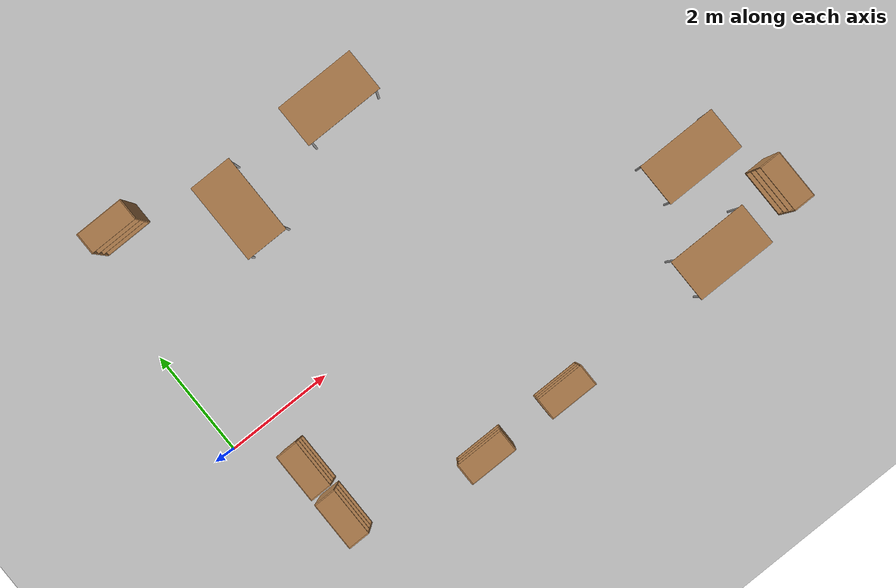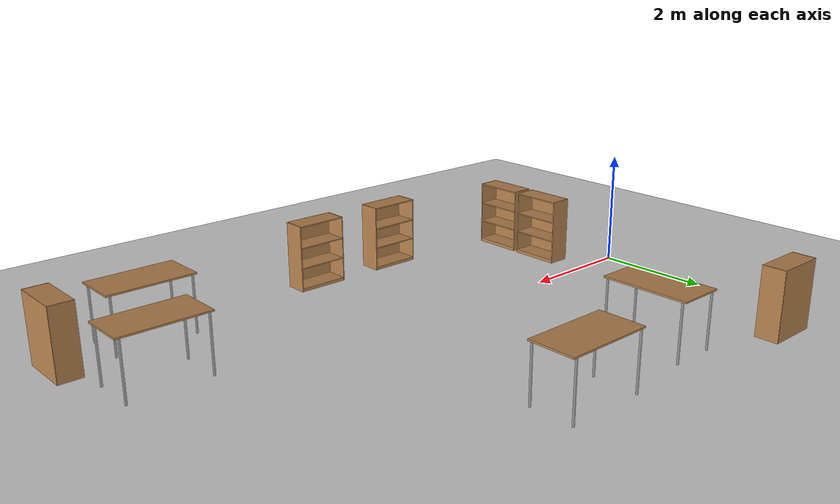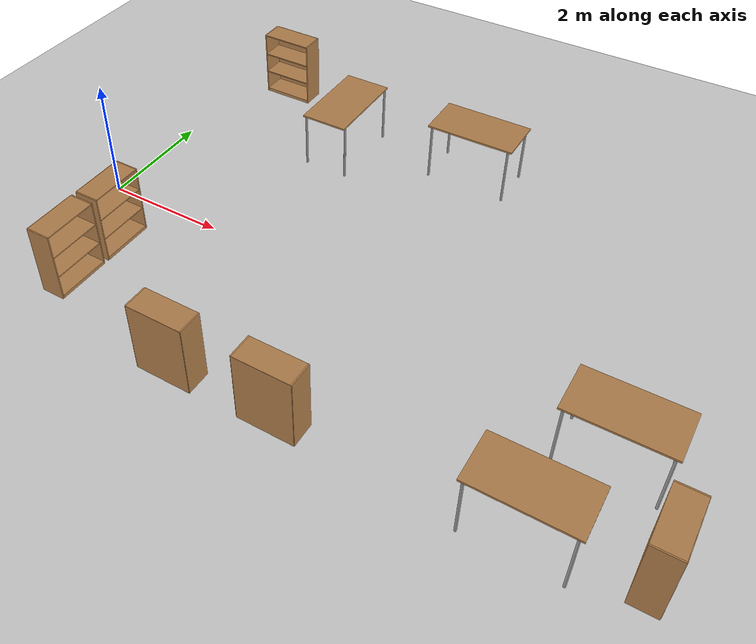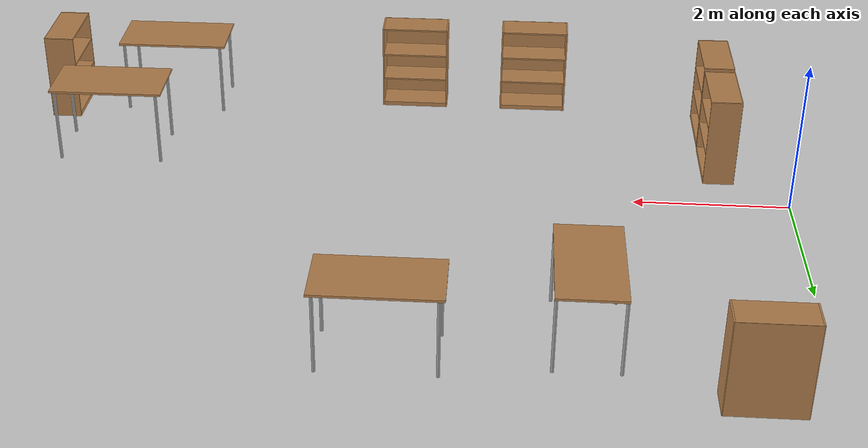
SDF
<sdf version="1.5">
 <world name="default">
  <model name="ground_plane">
   <static>1</static>
   <link name="link">
    <collision name="collision">
     <geometry><plane><normal>0 0 1</normal><size>100 100</size></plane></geometry>
     <surface><friction><ode><mu>100</mu><mu2>50</mu2></ode></friction></surface>
    </collision>
    <visual name="visual">
     <cast_shadows>0</cast_shadows>
     <geometry><plane><normal>0 0 1</normal><size>100 100</size></plane></geometry>
     <material>
      <script><uri>file://media/materials/scripts/gazebo.material</uri><name>Gazebo/Grey</name></script>
     </material>
    </visual>
   </link>
  </model>
  <model name="bookshelf_3_clone_clone_clone_0_clone_0">
   <static>1</static>
   <link name="link">
    <inertial><mass>1</mass></inertial>
    <collision name="back">
     <pose>0 0.005 0.6 0 -0 0</pose>
     <geometry><box><size>0.9 0.01 1.2</size></box></geometry>
    </collision>
    <visual name="visual1">
     <pose>0 0.005 0.6 0 -0 0</pose>
     <geometry><box><size>0.9 0.01 1.2</size></box></geometry>
     <material>
      <script><uri>file://media/materials/scripts/gazebo.material</uri><name>Gazebo/Wood</name></script>
     </material>
    </visual>
    <collision name="left_side">
     <pose>0.45 -0.195 0.6 0 -0 0</pose>
     <geometry><box><size>0.02 0.4 1.2</size></box></geometry>
    </collision>
    <visual name="visual2">
     <pose>0.45 -0.195 0.6 0 -0 0</pose>
     <geometry><box><size>0.02 0.4 1.2</size></box></geometry>
     <material>
      <script><uri>file://media/materials/scripts/gazebo.material</uri><name>Gazebo/Wood</name></script>
     </material>
    </visual>
    <collision name="right_side">
     <pose>-0.45 -0.195 0.6 0 -0 0</pose>
     <geometry><box><size>0.02 0.4 1.2</size></box></geometry>
    </collision>
    <visual name="visual3">
     <pose>-0.45 -0.195 0.6 0 -0 0</pose>
     <geometry><box><size>0.02 0.4 1.2</size></box></geometry>
     <material>
      <script><uri>file://media/materials/scripts/gazebo.material</uri><name>Gazebo/Wood</name></script>
     </material>
    </visual>
    <collision name="bottom">
     <pose>0 -0.195 0.03 0 -0 0</pose>
     <geometry><box><size>0.88 0.4 0.06</size></box></geometry>
    </collision>
    <visual name="visual4">
     <pose>0 -0.195 0.03 0 -0 0</pose>
     <geometry><box><size>0.88 0.4 0.06</size></box></geometry>
     <material>
      <script><uri>file://media/materials/scripts/gazebo.material</uri><name>Gazebo/Wood</name></script>
     </material>
    </visual>
    <collision name="top">
     <pose>0 -0.195 1.19 0 -0 0</pose>
     <geometry><box><size>0.88 0.4 0.02</size></box></geometry>
    </collision>
    <visual name="visual5">
     <pose>0 -0.195 1.19 0 -0 0</pose>
     <geometry><box><size>0.88 0.4 0.02</size></box></geometry>
     <material>
      <script><uri>file://media/materials/scripts/gazebo.material</uri><name>Gazebo/Wood</name></script>
     </material>
    </visual>
    <collision name="low_shelf">
     <pose>0 -0.195 0.43 0 -0 0</pose>
     <geometry><box><size>0.88 0.4 0.02</size></box></geometry>
    </collision>
    <visual name="visual6">
     <pose>0 -0.195 0.43 0 -0 0</pose>
     <geometry><box><size>0.88 0.4 0.02</size></box></geometry>
     <material>
      <script><uri>file://media/materials/scripts/gazebo.material</uri><name>Gazebo/Wood</name></script>
     </material>
    </visual>
    <collision name="high_shelf">
     <pose>0 -0.195 0.8 0 -0 0</pose>
     <geometry><box><size>0.88 0.4 0.02</size></box></geometry>
    </collision>
    <visual name="visual7">
     <pose>0 -0.195 0.8 0 -0 0</pose>
     <geometry><box><size>0.88 0.4 0.02</size></box></geometry>
     <material>
      <script><uri>file://media/materials/scripts/gazebo.material</uri><name>Gazebo/Wood</name></script>
     </material>
    </visual>
   </link>
   <pose>0.662032 -1.00554 0 0 -0 1.57</pose>
  </model>
  <model name="bookshelf_3_clone_clone_clone_0_clone_1">
   <static>1</static>
   <link name="link">
    <inertial><mass>1</mass></inertial>
    <collision name="back">
     <pose>0 0.005 0.6 0 -0 0</pose>
     <geometry><box><size>0.9 0.01 1.2</size></box></geometry>
    </collision>
    <visual name="visual1">
     <pose>0 0.005 0.6 0 -0 0</pose>
     <geometry><box><size>0.9 0.01 1.2</size></box></geometry>
     <material>
      <script><uri>file://media/materials/scripts/gazebo.material</uri><name>Gazebo/Wood</name></script>
     </material>
    </visual>
    <collision name="left_side">
     <pose>0.45 -0.195 0.6 0 -0 0</pose>
     <geometry><box><size>0.02 0.4 1.2</size></box></geometry>
    </collision>
    <visual name="visual2">
     <pose>0.45 -0.195 0.6 0 -0 0</pose>
     <geometry><box><size>0.02 0.4 1.2</size></box></geometry>
     <material>
      <script><uri>file://media/materials/scripts/gazebo.material</uri><name>Gazebo/Wood</name></script>
     </material>
    </visual>
    <collision name="right_side">
     <pose>-0.45 -0.195 0.6 0 -0 0</pose>
     <geometry><box><size>0.02 0.4 1.2</size></box></geometry>
    </collision>
    <visual name="visual3">
     <pose>-0.45 -0.195 0.6 0 -0 0</pose>
     <geometry><box><size>0.02 0.4 1.2</size></box></geometry>
     <material>
      <script><uri>file://media/materials/scripts/gazebo.material</uri><name>Gazebo/Wood</name></script>
     </material>
    </visual>
    <collision name="bottom">
     <pose>0 -0.195 0.03 0 -0 0</pose>
     <geometry><box><size>0.88 0.4 0.06</size></box></geometry>
    </collision>
    <visual name="visual4">
     <pose>0 -0.195 0.03 0 -0 0</pose>
     <geometry><box><size>0.88 0.4 0.06</size></box></geometry>
     <material>
      <script><uri>file://media/materials/scripts/gazebo.material</uri><name>Gazebo/Wood</name></script>
     </material>
    </visual>
    <collision name="top">
     <pose>0 -0.195 1.19 0 -0 0</pose>
     <geometry><box><size>0.88 0.4 0.02</size></box></geometry>
    </collision>
    <visual name="visual5">
     <pose>0 -0.195 1.19 0 -0 0</pose>
     <geometry><box><size>0.88 0.4 0.02</size></box></geometry>
     <material>
      <script><uri>file://media/materials/scripts/gazebo.material</uri><name>Gazebo/Wood</name></script>
     </material>
    </visual>
    <collision name="low_shelf">
     <pose>0 -0.195 0.43 0 -0 0</pose>
     <geometry><box><size>0.88 0.4 0.02</size></box></geometry>
    </collision>
    <visual name="visual6">
     <pose>0 -0.195 0.43 0 -0 0</pose>
     <geometry><box><size>0.88 0.4 0.02</size></box></geometry>
     <material>
      <script><uri>file://media/materials/scripts/gazebo.material</uri><name>Gazebo/Wood</name></script>
     </material>
    </visual>
    <collision name="high_shelf">
     <pose>0 -0.195 0.8 0 -0 0</pose>
     <geometry><box><size>0.88 0.4 0.02</size></box></geometry>
    </collision>
    <visual name="visual7">
     <pose>0 -0.195 0.8 0 -0 0</pose>
     <geometry><box><size>0.88 0.4 0.02</size></box></geometry>
     <material>
      <script><uri>file://media/materials/scripts/gazebo.material</uri><name>Gazebo/Wood</name></script>
     </material>
    </visual>
   </link>
   <pose>0.654542 -1.99972 0 0 -0 1.57</pose>
  </model>
  <model name="bookshelf_3_clone_clone_clone_clone">
   <static>1</static>
   <link name="link">
    <inertial><mass>1</mass></inertial>
    <collision name="back">
     <pose>0 0.005 0.6 0 -0 0</pose>
     <geometry><box><size>0.9 0.01 1.2</size></box></geometry>
    </collision>
    <visual name="visual1">
     <pose>0 0.005 0.6 0 -0 0</pose>
     <geometry><box><size>0.9 0.01 1.2</size></box></geometry>
     <material>
      <script><uri>file://media/materials/scripts/gazebo.material</uri><name>Gazebo/Wood</name></script>
     </material>
    </visual>
    <collision name="left_side">
     <pose>0.45 -0.195 0.6 0 -0 0</pose>
     <geometry><box><size>0.02 0.4 1.2</size></box></geometry>
    </collision>
    <visual name="visual2">
     <pose>0.45 -0.195 0.6 0 -0 0</pose>
     <geometry><box><size>0.02 0.4 1.2</size></box></geometry>
     <material>
      <script><uri>file://media/materials/scripts/gazebo.material</uri><name>Gazebo/Wood</name></script>
     </material>
    </visual>
    <collision name="right_side">
     <pose>-0.45 -0.195 0.6 0 -0 0</pose>
     <geometry><box><size>0.02 0.4 1.2</size></box></geometry>
    </collision>
    <visual name="visual3">
     <pose>-0.45 -0.195 0.6 0 -0 0</pose>
     <geometry><box><size>0.02 0.4 1.2</size></box></geometry>
     <material>
      <script><uri>file://media/materials/scripts/gazebo.material</uri><name>Gazebo/Wood</name></script>
     </material>
    </visual>
    <collision name="bottom">
     <pose>0 -0.195 0.03 0 -0 0</pose>
     <geometry><box><size>0.88 0.4 0.06</size></box></geometry>
    </collision>
    <visual name="visual4">
     <pose>0 -0.195 0.03 0 -0 0</pose>
     <geometry><box><size>0.88 0.4 0.06</size></box></geometry>
     <material>
      <script><uri>file://media/materials/scripts/gazebo.material</uri><name>Gazebo/Wood</name></script>
     </material>
    </visual>
    <collision name="top">
     <pose>0 -0.195 1.19 0 -0 0</pose>
     <geometry><box><size>0.88 0.4 0.02</size></box></geometry>
    </collision>
    <visual name="visual5">
     <pose>0 -0.195 1.19 0 -0 0</pose>
     <geometry><box><size>0.88 0.4 0.02</size></box></geometry>
     <material>
      <script><uri>file://media/materials/scripts/gazebo.material</uri><name>Gazebo/Wood</name></script>
     </material>
    </visual>
    <collision name="low_shelf">
     <pose>0 -0.195 0.43 0 -0 0</pose>
     <geometry><box><size>0.88 0.4 0.02</size></box></geometry>
    </collision>
    <visual name="visual6">
     <pose>0 -0.195 0.43 0 -0 0</pose>
     <geometry><box><size>0.88 0.4 0.02</size></box></geometry>
     <material>
      <script><uri>file://media/materials/scripts/gazebo.material</uri><name>Gazebo/Wood</name></script>
     </material>
    </visual>
    <collision name="high_shelf">
     <pose>0 -0.195 0.8 0 -0 0</pose>
     <geometry><box><size>0.88 0.4 0.02</size></box></geometry>
    </collision>
    <visual name="visual7">
     <pose>0 -0.195 0.8 0 -0 0</pose>
     <geometry><box><size>0.88 0.4 0.02</size></box></geometry>
     <material>
      <script><uri>file://media/materials/scripts/gazebo.material</uri><name>Gazebo/Wood</name></script>
     </material>
    </visual>
   </link>
   <pose>4.99213 -2.89208 0 0 -0 3.14</pose>
  </model>
  <model name="bookshelf_3_clone_clone_clone_clone_clone">
   <static>1</static>
   <link name="link">
    <inertial><mass>1</mass></inertial>
    <collision name="back">
     <pose>0 0.005 0.6 0 -0 0</pose>
     <geometry><box><size>0.9 0.01 1.2</size></box></geometry>
    </collision>
    <visual name="visual1">
     <pose>0 0.005 0.6 0 -0 0</pose>
     <geometry><box><size>0.9 0.01 1.2</size></box></geometry>
     <material>
      <script><uri>file://media/materials/scripts/gazebo.material</uri><name>Gazebo/Wood</name></script>
     </material>
    </visual>
    <collision name="left_side">
     <pose>0.45 -0.195 0.6 0 -0 0</pose>
     <geometry><box><size>0.02 0.4 1.2</size></box></geometry>
    </collision>
    <visual name="visual2">
     <pose>0.45 -0.195 0.6 0 -0 0</pose>
     <geometry><box><size>0.02 0.4 1.2</size></box></geometry>
     <material>
      <script><uri>file://media/materials/scripts/gazebo.material</uri><name>Gazebo/Wood</name></script>
     </material>
    </visual>
    <collision name="right_side">
     <pose>-0.45 -0.195 0.6 0 -0 0</pose>
     <geometry><box><size>0.02 0.4 1.2</size></box></geometry>
    </collision>
    <visual name="visual3">
     <pose>-0.45 -0.195 0.6 0 -0 0</pose>
     <geometry><box><size>0.02 0.4 1.2</size></box></geometry>
     <material>
      <script><uri>file://media/materials/scripts/gazebo.material</uri><name>Gazebo/Wood</name></script>
     </material>
    </visual>
    <collision name="bottom">
     <pose>0 -0.195 0.03 0 -0 0</pose>
     <geometry><box><size>0.88 0.4 0.06</size></box></geometry>
    </collision>
    <visual name="visual4">
     <pose>0 -0.195 0.03 0 -0 0</pose>
     <geometry><box><size>0.88 0.4 0.06</size></box></geometry>
     <material>
      <script><uri>file://media/materials/scripts/gazebo.material</uri><name>Gazebo/Wood</name></script>
     </material>
    </visual>
    <collision name="top">
     <pose>0 -0.195 1.19 0 -0 0</pose>
     <geometry><box><size>0.88 0.4 0.02</size></box></geometry>
    </collision>
    <visual name="visual5">
     <pose>0 -0.195 1.19 0 -0 0</pose>
     <geometry><box><size>0.88 0.4 0.02</size></box></geometry>
     <material>
      <script><uri>file://media/materials/scripts/gazebo.material</uri><name>Gazebo/Wood</name></script>
     </material>
    </visual>
    <collision name="low_shelf">
     <pose>0 -0.195 0.43 0 -0 0</pose>
     <geometry><box><size>0.88 0.4 0.02</size></box></geometry>
    </collision>
    <visual name="visual6">
     <pose>0 -0.195 0.43 0 -0 0</pose>
     <geometry><box><size>0.88 0.4 0.02</size></box></geometry>
     <material>
      <script><uri>file://media/materials/scripts/gazebo.material</uri><name>Gazebo/Wood</name></script>
     </material>
    </visual>
    <collision name="high_shelf">
     <pose>0 -0.195 0.8 0 -0 0</pose>
     <geometry><box><size>0.88 0.4 0.02</size></box></geometry>
    </collision>
    <visual name="visual7">
     <pose>0 -0.195 0.8 0 -0 0</pose>
     <geometry><box><size>0.88 0.4 0.02</size></box></geometry>
     <material>
      <script><uri>file://media/materials/scripts/gazebo.material</uri><name>Gazebo/Wood</name></script>
     </material>
    </visual>
   </link>
   <pose>3.3102 -2.89951 0 0 -0 3.14</pose>
  </model>
  <model name="bookshelf_3_clone_clone_1">
   <static>1</static>
   <link name="link">
    <inertial><mass>1</mass></inertial>
    <collision name="back">
     <pose>0 0.005 0.6 0 -0 0</pose>
     <geometry><box><size>0.9 0.01 1.2</size></box></geometry>
    </collision>
    <visual name="visual1">
     <pose>0 0.005 0.6 0 -0 0</pose>
     <geometry><box><size>0.9 0.01 1.2</size></box></geometry>
     <material>
      <script><uri>file://media/materials/scripts/gazebo.material</uri><name>Gazebo/Wood</name></script>
     </material>
    </visual>
    <collision name="left_side">
     <pose>0.45 -0.195 0.6 0 -0 0</pose>
     <geometry><box><size>0.02 0.4 1.2</size></box></geometry>
    </collision>
    <visual name="visual2">
     <pose>0.45 -0.195 0.6 0 -0 0</pose>
     <geometry><box><size>0.02 0.4 1.2</size></box></geometry>
     <material>
      <script><uri>file://media/materials/scripts/gazebo.material</uri><name>Gazebo/Wood</name></script>
     </material>
    </visual>
    <collision name="right_side">
     <pose>-0.45 -0.195 0.6 0 -0 0</pose>
     <geometry><box><size>0.02 0.4 1.2</size></box></geometry>
    </collision>
    <visual name="visual3">
     <pose>-0.45 -0.195 0.6 0 -0 0</pose>
     <geometry><box><size>0.02 0.4 1.2</size></box></geometry>
     <material>
      <script><uri>file://media/materials/scripts/gazebo.material</uri><name>Gazebo/Wood</name></script>
     </material>
    </visual>
    <collision name="bottom">
     <pose>0 -0.195 0.03 0 -0 0</pose>
     <geometry><box><size>0.88 0.4 0.06</size></box></geometry>
    </collision>
    <visual name="visual4">
     <pose>0 -0.195 0.03 0 -0 0</pose>
     <geometry><box><size>0.88 0.4 0.06</size></box></geometry>
     <material>
      <script><uri>file://media/materials/scripts/gazebo.material</uri><name>Gazebo/Wood</name></script>
     </material>
    </visual>
    <collision name="top">
     <pose>0 -0.195 1.19 0 -0 0</pose>
     <geometry><box><size>0.88 0.4 0.02</size></box></geometry>
    </collision>
    <visual name="visual5">
     <pose>0 -0.195 1.19 0 -0 0</pose>
     <geometry><box><size>0.88 0.4 0.02</size></box></geometry>
     <material>
      <script><uri>file://media/materials/scripts/gazebo.material</uri><name>Gazebo/Wood</name></script>
     </material>
    </visual>
    <collision name="low_shelf">
     <pose>0 -0.195 0.43 0 -0 0</pose>
     <geometry><box><size>0.88 0.4 0.02</size></box></geometry>
    </collision>
    <visual name="visual6">
     <pose>0 -0.195 0.43 0 -0 0</pose>
     <geometry><box><size>0.88 0.4 0.02</size></box></geometry>
     <material>
      <script><uri>file://media/materials/scripts/gazebo.material</uri><name>Gazebo/Wood</name></script>
     </material>
    </visual>
    <collision name="high_shelf">
     <pose>0 -0.195 0.8 0 -0 0</pose>
     <geometry><box><size>0.88 0.4 0.02</size></box></geometry>
    </collision>
    <visual name="visual7">
     <pose>0 -0.195 0.8 0 -0 0</pose>
     <geometry><box><size>0.88 0.4 0.02</size></box></geometry>
     <material>
      <script><uri>file://media/materials/scripts/gazebo.material</uri><name>Gazebo/Wood</name></script>
     </material>
    </visual>
   </link>
   <pose>0.868357 4.29788 0 0 -0 0</pose>
  </model>
  <model name="table_3_clone_clone_clone_0_clone_0">
   <static>1</static>
   <link name="link">
    <collision name="surface">
     <pose>0 0 1 0 -0 0</pose>
     <geometry><box><size>1.5 0.8 0.03</size></box></geometry>
     <surface><friction><ode><mu>0.6</mu><mu2>0.6</mu2></ode></friction></surface>
    </collision>
    <visual name="visual1">
     <pose>0 0 1 0 -0 0</pose>
     <geometry><box><size>1.5 0.8 0.03</size></box></geometry>
     <material>
      <script><uri>file://media/materials/scripts/gazebo.material</uri><name>Gazebo/Wood</name></script>
     </material>
    </visual>
    <collision name="front_left_leg">
     <pose>0.68 0.38 0.5 0 -0 0</pose>
     <geometry><cylinder><radius>0.02</radius><length>1</length></cylinder></geometry>
    </collision>
    <visual name="front_left_leg">
     <pose>0.68 0.38 0.5 0 -0 0</pose>
     <geometry><cylinder><radius>0.02</radius><length>1</length></cylinder></geometry>
     <material>
      <script><uri>file://media/materials/scripts/gazebo.material</uri><name>Gazebo/Grey</name></script>
     </material>
    </visual>
    <collision name="front_right_leg">
     <pose>0.68 -0.38 0.5 0 -0 0</pose>
     <geometry><cylinder><radius>0.02</radius><length>1</length></cylinder></geometry>
    </collision>
    <visual name="front_right_leg">
     <pose>0.68 -0.38 0.5 0 -0 0</pose>
     <geometry><cylinder><radius>0.02</radius><length>1</length></cylinder></geometry>
     <material>
      <script><uri>file://media/materials/scripts/gazebo.material</uri><name>Gazebo/Grey</name></script>
     </material>
    </visual>
    <collision name="back_right_leg">
     <pose>-0.68 -0.38 0.5 0 -0 0</pose>
     <geometry><cylinder><radius>0.02</radius><length>1</length></cylinder></geometry>
    </collision>
    <visual name="back_right_leg">
     <pose>-0.68 -0.38 0.5 0 -0 0</pose>
     <geometry><cylinder><radius>0.02</radius><length>1</length></cylinder></geometry>
     <material>
      <script><uri>file://media/materials/scripts/gazebo.material</uri><name>Gazebo/Grey</name></script>
     </material>
    </visual>
    <collision name="back_left_leg">
     <pose>-0.68 0.38 0.5 0 -0 0</pose>
     <geometry><cylinder><radius>0.02</radius><length>1</length></cylinder></geometry>
    </collision>
    <visual name="back_left_leg">
     <pose>-0.68 0.38 0.5 0 -0 0</pose>
     <geometry><cylinder><radius>0.02</radius><length>1</length></cylinder></geometry>
     <material>
      <script><uri>file://media/materials/scripts/gazebo.material</uri><name>Gazebo/Grey</name></script>
     </material>
    </visual>
   </link>
   <pose>2.70705 2.9999 0 0 -0 1.57</pose>
  </model>
  <model name="table_0_clone_clone_clone">
   <static>1</static>
   <link name="link">
    <collision name="surface">
     <pose>0 0 1 0 -0 0</pose>
     <geometry><box><size>1.5 0.8 0.03</size></box></geometry>
     <surface><friction><ode><mu>0.6</mu><mu2>0.6</mu2></ode></friction></surface>
    </collision>
    <visual name="visual1">
     <pose>0 0 1 0 -0 0</pose>
     <geometry><box><size>1.5 0.8 0.03</size></box></geometry>
     <material>
      <script><uri>file://media/materials/scripts/gazebo.material</uri><name>Gazebo/Wood</name></script>
     </material>
    </visual>
    <collision name="front_left_leg">
     <pose>0.68 0.38 0.5 0 -0 0</pose>
     <geometry><cylinder><radius>0.02</radius><length>1</length></cylinder></geometry>
    </collision>
    <visual name="front_left_leg">
     <pose>0.68 0.38 0.5 0 -0 0</pose>
     <geometry><cylinder><radius>0.02</radius><length>1</length></cylinder></geometry>
     <material>
      <script><uri>file://media/materials/scripts/gazebo.material</uri><name>Gazebo/Grey</name></script>
     </material>
    </visual>
    <collision name="front_right_leg">
     <pose>0.68 -0.38 0.5 0 -0 0</pose>
     <geometry><cylinder><radius>0.02</radius><length>1</length></cylinder></geometry>
    </collision>
    <visual name="front_right_leg">
     <pose>0.68 -0.38 0.5 0 -0 0</pose>
     <geometry><cylinder><radius>0.02</radius><length>1</length></cylinder></geometry>
     <material>
      <script><uri>file://media/materials/scripts/gazebo.material</uri><name>Gazebo/Grey</name></script>
     </material>
    </visual>
    <collision name="back_right_leg">
     <pose>-0.68 -0.38 0.5 0 -0 0</pose>
     <geometry><cylinder><radius>0.02</radius><length>1</length></cylinder></geometry>
    </collision>
    <visual name="back_right_leg">
     <pose>-0.68 -0.38 0.5 0 -0 0</pose>
     <geometry><cylinder><radius>0.02</radius><length>1</length></cylinder></geometry>
     <material>
      <script><uri>file://media/materials/scripts/gazebo.material</uri><name>Gazebo/Grey</name></script>
     </material>
    </visual>
    <collision name="back_left_leg">
     <pose>-0.68 0.38 0.5 0 -0 0</pose>
     <geometry><cylinder><radius>0.02</radius><length>1</length></cylinder></geometry>
    </collision>
    <visual name="back_left_leg">
     <pose>-0.68 0.38 0.5 0 -0 0</pose>
     <geometry><cylinder><radius>0.02</radius><length>1</length></cylinder></geometry>
     <material>
      <script><uri>file://media/materials/scripts/gazebo.material</uri><name>Gazebo/Grey</name></script>
     </material>
    </visual>
   </link>
   <pose>9 -1 0 0 -0 0</pose>
  </model>
  <model name="bookshelf_3_clone_clone_clone_0_clone_2">
   <static>1</static>
   <link name="link">
    <inertial><mass>1</mass></inertial>
    <collision name="back">
     <pose>0 0.005 0.6 0 -0 0</pose>
     <geometry><box><size>0.9 0.01 1.2</size></box></geometry>
    </collision>
    <visual name="visual1">
     <pose>0 0.005 0.6 0 -0 0</pose>
     <geometry><box><size>0.9 0.01 1.2</size></box></geometry>
     <material>
      <script><uri>file://media/materials/scripts/gazebo.material</uri><name>Gazebo/Wood</name></script>
     </material>
    </visual>
    <collision name="left_side">
     <pose>0.45 -0.195 0.6 0 -0 0</pose>
     <geometry><box><size>0.02 0.4 1.2</size></box></geometry>
    </collision>
    <visual name="visual2">
     <pose>0.45 -0.195 0.6 0 -0 0</pose>
     <geometry><box><size>0.02 0.4 1.2</size></box></geometry>
     <material>
      <script><uri>file://media/materials/scripts/gazebo.material</uri><name>Gazebo/Wood</name></script>
     </material>
    </visual>
    <collision name="right_side">
     <pose>-0.45 -0.195 0.6 0 -0 0</pose>
     <geometry><box><size>0.02 0.4 1.2</size></box></geometry>
    </collision>
    <visual name="visual3">
     <pose>-0.45 -0.195 0.6 0 -0 0</pose>
     <geometry><box><size>0.02 0.4 1.2</size></box></geometry>
     <material>
      <script><uri>file://media/materials/scripts/gazebo.material</uri><name>Gazebo/Wood</name></script>
     </material>
    </visual>
    <collision name="bottom">
     <pose>0 -0.195 0.03 0 -0 0</pose>
     <geometry><box><size>0.88 0.4 0.06</size></box></geometry>
    </collision>
    <visual name="visual4">
     <pose>0 -0.195 0.03 0 -0 0</pose>
     <geometry><box><size>0.88 0.4 0.06</size></box></geometry>
     <material>
      <script><uri>file://media/materials/scripts/gazebo.material</uri><name>Gazebo/Wood</name></script>
     </material>
    </visual>
    <collision name="top">
     <pose>0 -0.195 1.19 0 -0 0</pose>
     <geometry><box><size>0.88 0.4 0.02</size></box></geometry>
    </collision>
    <visual name="visual5">
     <pose>0 -0.195 1.19 0 -0 0</pose>
     <geometry><box><size>0.88 0.4 0.02</size></box></geometry>
     <material>
      <script><uri>file://media/materials/scripts/gazebo.material</uri><name>Gazebo/Wood</name></script>
     </material>
    </visual>
    <collision name="low_shelf">
     <pose>0 -0.195 0.43 0 -0 0</pose>
     <geometry><box><size>0.88 0.4 0.02</size></box></geometry>
    </collision>
    <visual name="visual6">
     <pose>0 -0.195 0.43 0 -0 0</pose>
     <geometry><box><size>0.88 0.4 0.02</size></box></geometry>
     <material>
      <script><uri>file://media/materials/scripts/gazebo.material</uri><name>Gazebo/Wood</name></script>
     </material>
    </visual>
    <collision name="high_shelf">
     <pose>0 -0.195 0.8 0 -0 0</pose>
     <geometry><box><size>0.88 0.4 0.02</size></box></geometry>
    </collision>
    <visual name="visual7">
     <pose>0 -0.195 0.8 0 -0 0</pose>
     <geometry><box><size>0.88 0.4 0.02</size></box></geometry>
     <material>
      <script><uri>file://media/materials/scripts/gazebo.material</uri><name>Gazebo/Wood</name></script>
     </material>
    </visual>
   </link>
   <pose>10.1223 -2.28842 0 0 0 -1.57</pose>
  </model>
  <model name="table_0_clone_clone_clone_clone">
   <static>1</static>
   <link name="link">
    <collision name="surface">
     <pose>0 0 1 0 -0 0</pose>
     <geometry><box><size>1.5 0.8 0.03</size></box></geometry>
     <surface><friction><ode><mu>0.6</mu><mu2>0.6</mu2></ode></friction></surface>
    </collision>
    <visual name="visual1">
     <pose>0 0 1 0 -0 0</pose>
     <geometry><box><size>1.5 0.8 0.03</size></box></geometry>
     <material>
      <script><uri>file://media/materials/scripts/gazebo.material</uri><name>Gazebo/Wood</name></script>
     </material>
    </visual>
    <collision name="front_left_leg">
     <pose>0.68 0.38 0.5 0 -0 0</pose>
     <geometry><cylinder><radius>0.02</radius><length>1</length></cylinder></geometry>
    </collision>
    <visual name="front_left_leg">
     <pose>0.68 0.38 0.5 0 -0 0</pose>
     <geometry><cylinder><radius>0.02</radius><length>1</length></cylinder></geometry>
     <material>
      <script><uri>file://media/materials/scripts/gazebo.material</uri><name>Gazebo/Grey</name></script>
     </material>
    </visual>
    <collision name="front_right_leg">
     <pose>0.68 -0.38 0.5 0 -0 0</pose>
     <geometry><cylinder><radius>0.02</radius><length>1</length></cylinder></geometry>
    </collision>
    <visual name="front_right_leg">
     <pose>0.68 -0.38 0.5 0 -0 0</pose>
     <geometry><cylinder><radius>0.02</radius><length>1</length></cylinder></geometry>
     <material>
      <script><uri>file://media/materials/scripts/gazebo.material</uri><name>Gazebo/Grey</name></script>
     </material>
    </visual>
    <collision name="back_right_leg">
     <pose>-0.68 -0.38 0.5 0 -0 0</pose>
     <geometry><cylinder><radius>0.02</radius><length>1</length></cylinder></geometry>
    </collision>
    <visual name="back_right_leg">
     <pose>-0.68 -0.38 0.5 0 -0 0</pose>
     <geometry><cylinder><radius>0.02</radius><length>1</length></cylinder></geometry>
     <material>
      <script><uri>file://media/materials/scripts/gazebo.material</uri><name>Gazebo/Grey</name></script>
     </material>
    </visual>
    <collision name="back_left_leg">
     <pose>-0.68 0.38 0.5 0 -0 0</pose>
     <geometry><cylinder><radius>0.02</radius><length>1</length></cylinder></geometry>
    </collision>
    <visual name="back_left_leg">
     <pose>-0.68 0.38 0.5 0 -0 0</pose>
     <geometry><cylinder><radius>0.02</radius><length>1</length></cylinder></geometry>
     <material>
      <script><uri>file://media/materials/scripts/gazebo.material</uri><name>Gazebo/Grey</name></script>
     </material>
    </visual>
   </link>
   <pose>8.40982 -2.53377 0 0 -0 0</pose>
  </model>
  <model name="table_0_clone_clone_clone_clone_0">
   <static>1</static>
   <link name="link">
    <collision name="surface">
     <pose>0 0 1 0 -0 0</pose>
     <geometry><box><size>1.5 0.8 0.03</size></box></geometry>
     <surface><friction><ode><mu>0.6</mu><mu2>0.6</mu2></ode></friction></surface>
    </collision>
    <visual name="visual1">
     <pose>0 0 1 0 -0 0</pose>
     <geometry><box><size>1.5 0.8 0.03</size></box></geometry>
     <material>
      <script><uri>file://media/materials/scripts/gazebo.material</uri><name>Gazebo/Wood</name></script>
     </material>
    </visual>
    <collision name="front_left_leg">
     <pose>0.68 0.38 0.5 0 -0 0</pose>
     <geometry><cylinder><radius>0.02</radius><length>1</length></cylinder></geometry>
    </collision>
    <visual name="front_left_leg">
     <pose>0.68 0.38 0.5 0 -0 0</pose>
     <geometry><cylinder><radius>0.02</radius><length>1</length></cylinder></geometry>
     <material>
      <script><uri>file://media/materials/scripts/gazebo.material</uri><name>Gazebo/Grey</name></script>
     </material>
    </visual>
    <collision name="front_right_leg">
     <pose>0.68 -0.38 0.5 0 -0 0</pose>
     <geometry><cylinder><radius>0.02</radius><length>1</length></cylinder></geometry>
    </collision>
    <visual name="front_right_leg">
     <pose>0.68 -0.38 0.5 0 -0 0</pose>
     <geometry><cylinder><radius>0.02</radius><length>1</length></cylinder></geometry>
     <material>
      <script><uri>file://media/materials/scripts/gazebo.material</uri><name>Gazebo/Grey</name></script>
     </material>
    </visual>
    <collision name="back_right_leg">
     <pose>-0.68 -0.38 0.5 0 -0 0</pose>
     <geometry><cylinder><radius>0.02</radius><length>1</length></cylinder></geometry>
    </collision>
    <visual name="back_right_leg">
     <pose>-0.68 -0.38 0.5 0 -0 0</pose>
     <geometry><cylinder><radius>0.02</radius><length>1</length></cylinder></geometry>
     <material>
      <script><uri>file://media/materials/scripts/gazebo.material</uri><name>Gazebo/Grey</name></script>
     </material>
    </visual>
    <collision name="back_left_leg">
     <pose>-0.68 0.38 0.5 0 -0 0</pose>
     <geometry><cylinder><radius>0.02</radius><length>1</length></cylinder></geometry>
    </collision>
    <visual name="back_left_leg">
     <pose>-0.68 0.38 0.5 0 -0 0</pose>
     <geometry><cylinder><radius>0.02</radius><length>1</length></cylinder></geometry>
     <material>
      <script><uri>file://media/materials/scripts/gazebo.material</uri><name>Gazebo/Grey</name></script>
     </material>
    </visual>
   </link>
   <pose>5 3.47553 0 0 -0 0</pose>
  </model>
 </world>
</sdf>
